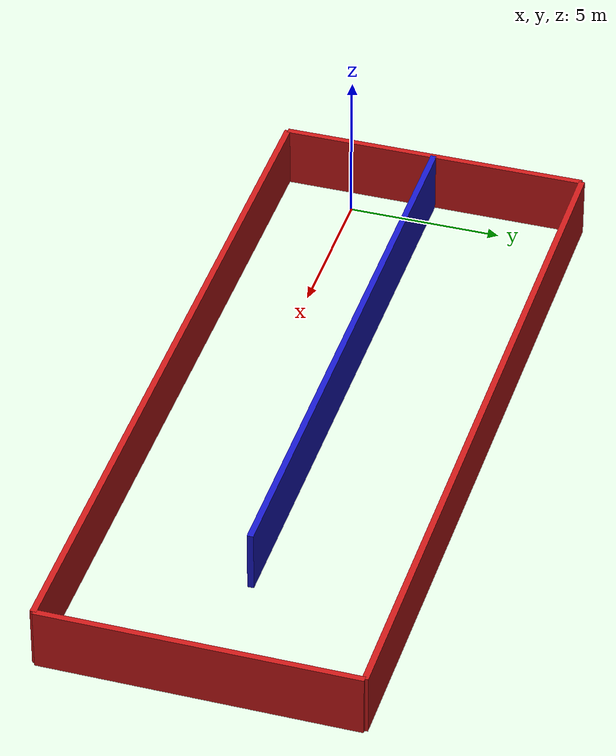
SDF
<sdf version="1.11">
 <world name="training_arena">
  <physics name="4ms" type="dart">
   <max_step_size>0.004</max_step_size>
   <real_time_factor>1.0</real_time_factor>
  </physics>
  <plugin filename="gz-sim-physics-system" name="gz::sim::systems::Physics"/>
  <plugin filename="gz-sim-user-commands-system" name="gz::sim::systems::UserCommands"/>
  <plugin filename="gz-sim-scene-broadcaster-system" name="gz::sim::systems::SceneBroadcaster"/>
  <plugin filename="gz-sim-navsat-system" name="gz::sim::systems::NavSat"/>
  <plugin filename="gz-sim-imu-system" name="gz::sim::systems::Imu"/>
  <plugin filename="gz-sim-sensors-system" name="gz::sim::systems::Sensors">
   <render_engine>ogre2</render_engine>
  </plugin>
  <spherical_coordinates>
   <surface_model>EARTH_WGS84</surface_model>
   <world_frame_orientation>ENU</world_frame_orientation>
   <latitude_deg>37.5665</latitude_deg>
   <longitude_deg>126.9780</longitude_deg>
   <elevation>0.0</elevation>
   <heading_deg>0.0</heading_deg>
  </spherical_coordinates>
  <light type="directional" name="sun">
   <pose>0 0 10 0 0 0</pose>
   <diffuse>0.8 0.8 0.8 1</diffuse>
   <specular>0.2 0.2 0.2 1</specular>
   <attenuation>
    <range>1000</range>
    <constant>0.9</constant>
    <linear>0.01</linear>
    <quadratic>0.001</quadratic>
   </attenuation>
   <direction>-0.5 0.1 -0.9</direction>
  </light>
  <plugin filename="libUSVWind.so" name="vrx::USVWind">
   <wind_obj>
    <name>mechaship</name>
    <link_name>mechaship::base_link</link_name>
    <coeff_vector>.2 .2 .1</coeff_vector>
   </wind_obj>
   <wind_direction>240</wind_direction>
   <wind_mean_velocity>1.0</wind_mean_velocity>
   <var_wind_gain_constants>0.2</var_wind_gain_constants>
   <var_wind_time_constants>2.0</var_wind_time_constants>
   <random_seed>10</random_seed>
   <update_rate>10</update_rate>
   <topic_wind_speed>/vrx/debug/wind/speed</topic_wind_speed>
   <topic_wind_direction>/vrx/debug/wind/direction</topic_wind_direction>
  </plugin>
  <plugin filename="libPublisherPlugin.so" name="vrx::PublisherPlugin">
   <message type="gz.msgs.Param" topic="/vrx/wavefield/parameters" every="2.0">params {
          key: "direction"
          value {
            type: DOUBLE
            double_value: 0.0
          }
        }
        params {
          key: "gain"
          value {
            type: DOUBLE
            double_value: 0.3
          }
        }
        params {
          key: "period"
          value {
            type: DOUBLE
            double_value: 5
          }
        }
        params {
          key: "steepness"
          value {
            type: DOUBLE
            double_value: 0
          }
        }</message>
  </plugin>
  <scene><grid>false</grid><ambient>1.0 1.0 1.0</ambient><background>0.8 0.8 0.8</background></scene>
  <model name="wall_south">
   <pose>-1 2.5 1 0 0 1.5708</pose>
   <static>true</static>
   <link name="wall_link">
    <collision name="collision"><geometry><box><size>10 0.2 2</size></box></geometry></collision>
    <visual name="visual">
     <geometry><box><size>10 0.2 2</size></box></geometry>
     <material><ambient>0.8 0.1 0.1 1</ambient><diffuse>0.8 0.1 0.1 1</diffuse></material>
    </visual>
   </link>
  </model>
  <model name="wall_north">
   <pose>24 2.5 1 0 0 1.5708</pose>
   <static>true</static>
   <link name="wall_link">
    <collision name="collision"><geometry><box><size>10 0.2 2</size></box></geometry></collision>
    <visual name="visual">
     <geometry><box><size>10 0.2 2</size></box></geometry>
     <material><ambient>0.8 0.1 0.1 1</ambient><diffuse>0.8 0.1 0.1 1</diffuse></material>
    </visual>
   </link>
  </model>
  <model name="wall_east">
   <pose>11.5 -2.5 1 0 0 0</pose>
   <static>true</static>
   <link name="wall_link">
    <collision name="collision"><geometry><box><size>25 0.2 2</size></box></geometry></collision>
    <visual name="visual">
     <geometry><box><size>25 0.2 2</size></box></geometry>
     <material><ambient>0.8 0.1 0.1 1</ambient><diffuse>0.8 0.1 0.1 1</diffuse></material>
    </visual>
   </link>
  </model>
  <model name="wall_west">
   <pose>11.5 7.5 1 0 0 0</pose>
   <static>true</static>
   <link name="wall_link">
    <collision name="collision"><geometry><box><size>25 0.2 2</size></box></geometry></collision>
    <visual name="visual">
     <geometry><box><size>25 0.2 2</size></box></geometry>
     <material><ambient>0.8 0.1 0.1 1</ambient><diffuse>0.8 0.1 0.1 1</diffuse></material>
    </visual>
   </link>
  </model>
  <model name="wall_center">
   <pose>9 2.5 1 0 0 0</pose>
   <static>true</static>
   <link name="wall_link">
    <collision name="collision"><geometry><box><size>20 0.2 2</size></box></geometry></collision>
    <visual name="visual">
     <geometry><box><size>20 0.2 2</size></box></geometry>
     <material><ambient>0.1 0.1 0.8 1</ambient><diffuse>0.1 0.1 0.8 1</diffuse></material>
    </visual>
   </link>
  </model>
 </world>
</sdf>
